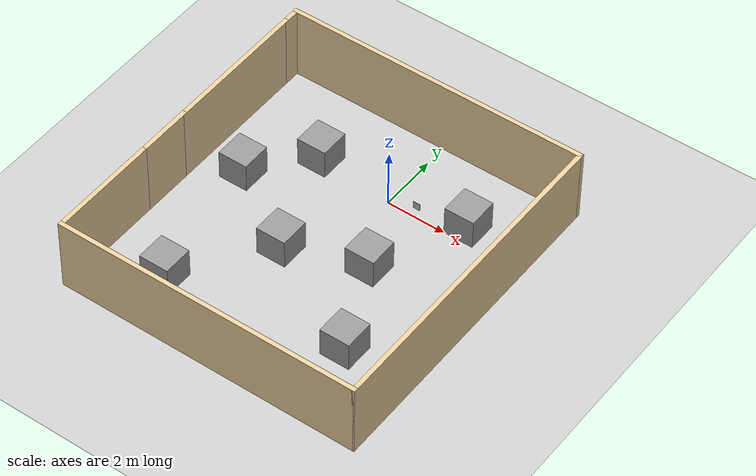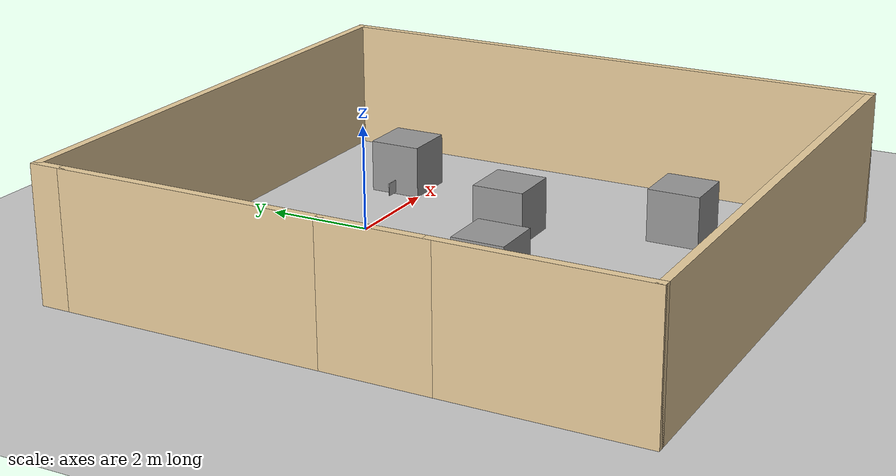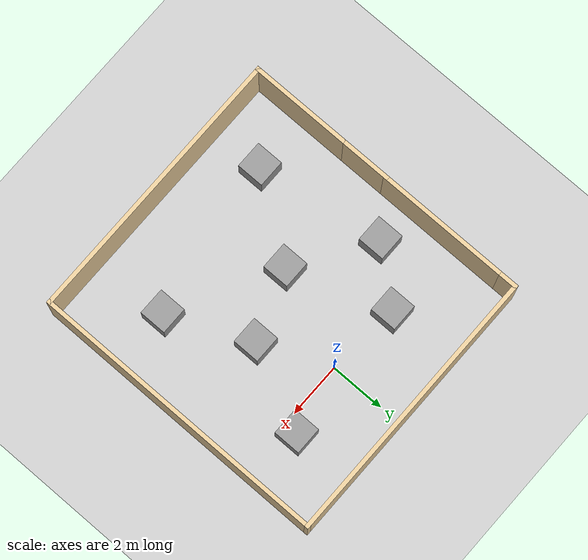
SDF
<sdf version='1.9'>
  <world name='maze'>
    <physics name='1ms' type='ode'>
      <max_step_size>0.001</max_step_size>
      <real_time_factor>1</real_time_factor>
      <real_time_update_rate>1000</real_time_update_rate>
    </physics>
    <plugin name='ignition::gazebo::systems::Physics' filename='libignition-gazebo-physics-system.so'/>
    <plugin name='ignition::gazebo::systems::UserCommands' filename='libignition-gazebo-user-commands-system.so'/>
    <plugin name='ignition::gazebo::systems::SceneBroadcaster' filename='libignition-gazebo-scene-broadcaster-system.so'/>
    <plugin name='ignition::gazebo::systems::Sensors' filename='libignition-gazebo-sensors-system.so'>
      <render_engine>ogre2</render_engine>
    </plugin>
    <plugin name='ignition::gazebo::systems::Contact' filename='libignition-gazebo-contact-system.so'/>
    <gravity>0 0 -9.8</gravity>
    <magnetic_field>6e-06 2.3e-05 -4.2e-05</magnetic_field>
    <atmosphere type='adiabatic'/>
    <scene>
      <ambient>0.4 0.4 0.4 1</ambient>
      <background>0.7 0.7 0.7 1</background>
      <shadows>true</shadows>
    </scene>
    <model name='ground_plane'>
      <static>true</static>
      <link name='link'>
        <collision name='collision'>
          <geometry>
            <plane>
              <normal>0 0 1</normal>
              <size>100 100</size>
            </plane>
          </geometry>
          <surface>
            <friction>
              <ode>
                <mu>1</mu>
                <mu2>1</mu2>
              </ode>
            </friction>
            <bounce/>
            <contact/>
          </surface>
        </collision>
        <visual name='visual'>
          <geometry>
            <plane>
              <normal>0 0 1</normal>
              <size>100 100</size>
            </plane>
          </geometry>
          <material>
            <ambient>0.8 0.8 0.8 1</ambient>
            <diffuse>0.8 0.8 0.8 1</diffuse>
          </material>
        </visual>
        <pose>0 0 0 0 -0 0</pose>
        <inertial>
          <pose>0 0 0 0 -0 0</pose>
          <mass>1</mass>
          <inertia>
            <ixx>1</ixx><ixy>0</ixy><ixz>0</ixz>
            <iyy>1</iyy><iyz>0</iyz><izz>1</izz>
          </inertia>
        </inertial>
        <enable_wind>false</enable_wind>
      </link>
      <pose>0 0 0 0 -0 0</pose>
      <self_collide>false</self_collide>
    </model>

    <model name='aruco_marker_0'>
      <static>true</static>
      <pose>1.0 0 0.5 0 -1.5708 0</pose>
      <link name='link'>
        <collision name='col'>
          <geometry>
            <box><size>0.24 0.02 0.24</size></box>
          </geometry>
        </collision>
        <visual name='vis'>
          <geometry>
            <box><size>0.24 0.02 0.24</size></box>
          </geometry>
          <material>
            <script>
              <uri>model://puzzlebot_description/materials/scripts/aruco_marker_0.material</uri>
              <uri>model://puzzlebot_description/materials/textures/</uri>
              <name>aruco_marker_0</name>
            </script>
          </material>
        </visual>
      </link>
      <self_collide>false</self_collide>
    </model>

    <model name='Wall_0'>
      <static>true</static>
      <pose>-5.46 -6.22 0 0 0 -1.5708</pose>
      <link name='link'>
        <collision name='col'>
          <pose>0 0 1.25 0 0 0</pose>
          <geometry><box><size>3.75 0.15 2.5</size></box></geometry>
          <surface><friction><ode/></friction><bounce/><contact/></surface>
        </collision>
        <visual name='vis'>
          <pose>0 0 1.25 0 0 0</pose>
          <geometry><box><size>3.75 0.15 2.5</size></box></geometry>
          <material><ambient>0.92 0.81 0.62 1</ambient><diffuse>0.92 0.81 0.62 1</diffuse></material>
        </visual>
        <pose>0 0 0 0 -0 0</pose>
        <inertial><pose>0 0 0 0 -0 0</pose><mass>1</mass>
          <inertia><ixx>1</ixx><ixy>0</ixy><ixz>0</ixz><iyy>1</iyy><iyz>0</iyz><izz>1</izz></inertia>
        </inertial>
        <enable_wind>false</enable_wind>
      </link>
      <self_collide>false</self_collide>
    </model>
    <model name='Wall_1'>
      <static>true</static>
      <pose>-0.41 -8.02 0 0 -0 0</pose>
      <link name='link'>
        <collision name='col'><pose>0 0 1.25 0 0 0</pose>
          <geometry><box><size>10.25 0.15 2.5</size></box></geometry>
          <surface><friction><ode/></friction><bounce/><contact/></surface>
        </collision>
        <visual name='vis'><pose>0 0 1.25 0 0 0</pose>
          <geometry><box><size>10.25 0.15 2.5</size></box></geometry>
          <material><ambient>0.92 0.81 0.62 1</ambient><diffuse>0.92 0.81 0.62 1</diffuse></material>
        </visual>
        <pose>0 0 0 0 -0 0</pose>
        <inertial><pose>0 0 0 0 -0 0</pose><mass>1</mass>
          <inertia><ixx>1</ixx><ixy>0</ixy><ixz>0</ixz><iyy>1</iyy><iyz>0</iyz><izz>1</izz></inertia>
        </inertial>
        <enable_wind>false</enable_wind>
      </link>
      <self_collide>false</self_collide>
    </model>
    <model name='Wall_2'>
      <static>true</static>
      <pose>4.64 -2.595 0 0 -0 1.5708</pose>
      <link name='link'>
        <collision name='col'><pose>0 0 1.25 0 0 0</pose>
          <geometry><box><size>11 0.15 2.5</size></box></geometry>
          <surface><friction><ode/></friction><bounce/><contact/></surface>
        </collision>
        <visual name='vis'><pose>0 0 1.25 0 0 0</pose>
          <geometry><box><size>11 0.15 2.5</size></box></geometry>
          <material><ambient>0.92 0.81 0.62 1</ambient><diffuse>0.92 0.81 0.62 1</diffuse></material>
        </visual>
        <pose>0 0 0 0 -0 0</pose>
        <inertial><pose>0 0 0 0 -0 0</pose><mass>1</mass>
          <inertia><ixx>1</ixx><ixy>0</ixy><ixz>0</ixz><iyy>1</iyy><iyz>0</iyz><izz>1</izz></inertia>
        </inertial>
        <enable_wind>false</enable_wind>
      </link>
      <self_collide>false</self_collide>
    </model>
    <model name='Wall_4'>
      <static>true</static>
      <pose>-5.46 -3.495 0 0 -0 1.5708</pose>
      <link name='link'>
        <collision name='col'><pose>0 0 1.25 0 0 0</pose>
          <geometry><box><size>2 0.15 2.5</size></box></geometry>
          <surface><friction><ode/></friction><bounce/><contact/></surface>
        </collision>
        <visual name='vis'><pose>0 0 1.25 0 0 0</pose>
          <geometry><box><size>2 0.15 2.5</size></box></geometry>
          <material><ambient>0.92 0.81 0.62 1</ambient><diffuse>0.92 0.81 0.62 1</diffuse></material>
        </visual>
        <pose>0 0 0 0 -0 0</pose>
        <inertial><pose>0 0 0 0 -0 0</pose><mass>1</mass>
          <inertia><ixx>1</ixx><ixy>0</ixy><ixz>0</ixz><iyy>1</iyy><iyz>0</iyz><izz>1</izz></inertia>
        </inertial>
        <enable_wind>false</enable_wind>
      </link>
      <self_collide>false</self_collide>
    </model>
    <model name='Wall_5'>
      <static>true</static>
      <pose>-5.46 -0.145 0 0 -0 1.5708</pose>
      <link name='link'>
        <collision name='col'><pose>0 0 1.25 0 0 0</pose>
          <geometry><box><size>5 0.15 2.5</size></box></geometry>
          <surface><friction><ode/></friction><bounce/><contact/></surface>
        </collision>
        <visual name='vis'><pose>0 0 1.25 0 0 0</pose>
          <geometry><box><size>5 0.15 2.5</size></box></geometry>
          <material><ambient>0.92 0.81 0.62 1</ambient><diffuse>0.92 0.81 0.62 1</diffuse></material>
        </visual>
        <pose>0 0 0 0 -0 0</pose>
        <inertial><pose>0 0 0 0 -0 0</pose><mass>1</mass>
          <inertia><ixx>1</ixx><ixy>0</ixy><ixz>0</ixz><iyy>1</iyy><iyz>0</iyz><izz>1</izz></inertia>
        </inertial>
        <enable_wind>false</enable_wind>
      </link>
      <self_collide>false</self_collide>
    </model>
    <model name='Wall_8'>
      <static>true</static>
      <pose>-0.41 2.83 0 0 -0 3.14159</pose>
      <link name='link'>
        <collision name='col'><pose>0 0 1.25 0 0 0</pose>
          <geometry><box><size>10.25 0.15 2.5</size></box></geometry>
          <surface><friction><ode/></friction><bounce/><contact/></surface>
        </collision>
        <visual name='vis'><pose>0 0 1.25 0 0 0</pose>
          <geometry><box><size>10.25 0.15 2.5</size></box></geometry>
          <material><ambient>0.92 0.81 0.62 1</ambient><diffuse>0.92 0.81 0.62 1</diffuse></material>
        </visual>
        <pose>0 0 0 0 -0 0</pose>
        <inertial><pose>0 0 0 0 -0 0</pose><mass>1</mass>
          <inertia><ixx>1</ixx><ixy>0</ixy><ixz>0</ixz><iyy>1</iyy><iyz>0</iyz><izz>1</izz></inertia>
        </inertial>
        <enable_wind>false</enable_wind>
      </link>
      <self_collide>false</self_collide>
    </model>
    <model name='Wall_9'>
      <static>true</static>
      <pose>-5.46 2.555 0 0 0 -1.5708</pose>
      <link name='link'>
        <collision name='col'><pose>0 0 1.25 0 0 0</pose>
          <geometry><box><size>0.7 0.15 2.5</size></box></geometry>
          <surface><friction><ode/></friction><bounce/><contact/></surface>
        </collision>
        <visual name='vis'><pose>0 0 1.25 0 0 0</pose>
          <geometry><box><size>0.7 0.15 2.5</size></box></geometry>
          <material><ambient>0.92 0.81 0.62 1</ambient><diffuse>0.92 0.81 0.62 1</diffuse></material>
        </visual>
        <pose>0 0 0 0 -0 0</pose>
        <inertial><pose>0 0 0 0 -0 0</pose><mass>1</mass>
          <inertia><ixx>1</ixx><ixy>0</ixy><ixz>0</ixz><iyy>1</iyy><iyz>0</iyz><izz>1</izz></inertia>
        </inertial>
        <enable_wind>false</enable_wind>
      </link>
      <self_collide>false</self_collide>
    </model>
    <model name='box_0'><static>true</static><pose>-2.599 0.229 0.5 0 -0 0</pose>
      <link name='link'>
        <collision name='col'><geometry><box><size>1 1 1</size></box></geometry><surface><friction><ode/></friction><bounce/><contact/></surface></collision>
        <visual name='vis'><geometry><box><size>1 1 1</size></box></geometry><material><ambient>0.4 0.4 0.4 1</ambient><diffuse>0.6 0.6 0.6 1</diffuse></material></visual>
        <pose>0 0 0 0 -0 0</pose><inertial><pose>0 0 0 0 -0 0</pose><mass>1</mass><inertia><ixx>1</ixx><ixy>0</ixy><ixz>0</ixz><iyy>1</iyy><iyz>0</iyz><izz>1</izz></inertia></inertial><enable_wind>false</enable_wind>
      </link><self_collide>false</self_collide>
    </model>
    <model name='box_1'><static>true</static><pose>1.091 -2.438 0.5 0 -0 0</pose>
      <link name='link'>
        <collision name='col'><geometry><box><size>1 1 1</size></box></geometry><surface><friction><ode/></friction><bounce/><contact/></surface></collision>
        <visual name='vis'><geometry><box><size>1 1 1</size></box></geometry><material><ambient>0.4 0.4 0.4 1</ambient><diffuse>0.6 0.6 0.6 1</diffuse></material></visual>
        <pose>0 0 0 0 -0 0</pose><inertial><pose>0 0 0 0 -0 0</pose><mass>1</mass><inertia><ixx>1</ixx><ixy>0</ixy><ixz>0</ixz><iyy>1</iyy><iyz>0</iyz><izz>1</izz></inertia></inertial><enable_wind>false</enable_wind>
      </link><self_collide>false</self_collide>
    </model>
    <model name='box_2'><static>true</static><pose>-1.383 -3.322 0.5 0 -0 0</pose>
      <link name='link'>
        <collision name='col'><geometry><box><size>1 1 1</size></box></geometry><surface><friction><ode/></friction><bounce/><contact/></surface></collision>
        <visual name='vis'><geometry><box><size>1 1 1</size></box></geometry><material><ambient>0.4 0.4 0.4 1</ambient><diffuse>0.6 0.6 0.6 1</diffuse></material></visual>
        <pose>0 0 0 0 -0 0</pose><inertial><pose>0 0 0 0 -0 0</pose><mass>1</mass><inertia><ixx>1</ixx><ixy>0</ixy><ixz>0</ixz><iyy>1</iyy><iyz>0</iyz><izz>1</izz></inertia></inertial><enable_wind>false</enable_wind>
      </link><self_collide>false</self_collide>
    </model>
    <model name='box_3'><static>true</static><pose>-3.371 -6.146 0.5 0 -0 0</pose>
      <link name='link'>
        <collision name='col'><geometry><box><size>1 1 1</size></box></geometry><surface><friction><ode/></friction><bounce/><contact/></surface></collision>
        <visual name='vis'><geometry><box><size>1 1 1</size></box></geometry><material><ambient>0.4 0.4 0.4 1</ambient><diffuse>0.6 0.6 0.6 1</diffuse></material></visual>
        <pose>0 0 0 0 -0 0</pose><inertial><pose>0 0 0 0 -0 0</pose><mass>1</mass><inertia><ixx>1</ixx><ixy>0</ixy><ixz>0</ixz><iyy>1</iyy><iyz>0</iyz><izz>1</izz></inertia></inertial><enable_wind>false</enable_wind>
      </link><self_collide>false</self_collide>
    </model>
    <model name='box_4'><static>true</static><pose>2.467 0.506 0.5 0 -0 0</pose>
      <link name='link'>
        <collision name='col'><geometry><box><size>1 1 1</size></box></geometry><surface><friction><ode/></friction><bounce/><contact/></surface></collision>
        <visual name='vis'><geometry><box><size>1 1 1</size></box></geometry><material><ambient>0.4 0.4 0.4 1</ambient><diffuse>0.6 0.6 0.6 1</diffuse></material></visual>
        <pose>0 0 0 0 -0 0</pose><inertial><pose>0 0 0 0 -0 0</pose><mass>1</mass><inertia><ixx>1</ixx><ixy>0</ixy><ixz>0</ixz><iyy>1</iyy><iyz>0</iyz><izz>1</izz></inertia></inertial><enable_wind>false</enable_wind>
      </link><self_collide>false</self_collide>
    </model>
    <model name='box_5'><static>true</static><pose>2.364 -5.329 0.5 0 -0 0</pose>
      <link name='link'>
        <collision name='col'><geometry><box><size>1 1 1</size></box></geometry><surface><friction><ode/></friction><bounce/><contact/></surface></collision>
        <visual name='vis'><geometry><box><size>1 1 1</size></box></geometry><material><ambient>0.4 0.4 0.4 1</ambient><diffuse>0.6 0.6 0.6 1</diffuse></material></visual>
        <pose>0 0 0 0 -0 0</pose><inertial><pose>0 0 0 0 -0 0</pose><mass>1</mass><inertia><ixx>1</ixx><ixy>0</ixy><ixz>0</ixz><iyy>1</iyy><iyz>0</iyz><izz>1</izz></inertia></inertial><enable_wind>false</enable_wind>
      </link><self_collide>false</self_collide>
    </model>
    <model name='box_6'><static>true</static><pose>-4.104 -1.578 0.5 0 -0 0</pose>
      <link name='link'>
        <collision name='col'><geometry><box><size>1 1 1</size></box></geometry><surface><friction><ode/></friction><bounce/><contact/></surface></collision>
        <visual name='vis'><geometry><box><size>1 1 1</size></box></geometry><material><ambient>0.4 0.4 0.4 1</ambient><diffuse>0.6 0.6 0.6 1</diffuse></material></visual>
        <pose>0 0 0 0 -0 0</pose><inertial><pose>0 0 0 0 -0 0</pose><mass>1</mass><inertia><ixx>1</ixx><ixy>0</ixy><ixz>0</ixz><iyy>1</iyy><iyz>0</iyz><izz>1</izz></inertia></inertial><enable_wind>false</enable_wind>
      </link><self_collide>false</self_collide>
    </model>

    <light name='sun' type='directional'>
      <pose>0 0 10 0 -0 0</pose>
      <cast_shadows>true</cast_shadows>
      <intensity>1</intensity>
      <direction>-0.5 0.1 -0.9</direction>
      <diffuse>0.8 0.8 0.8 1</diffuse>
      <specular>0.2 0.2 0.2 1</specular>
      <attenuation>
        <range>10</range><linear>1</linear><constant>1</constant><quadratic>0</quadratic>
      </attenuation>
      <spot><inner_angle>0</inner_angle><outer_angle>0</outer_angle><falloff>0</falloff></spot>
    </light>
  </world>
</sdf>
